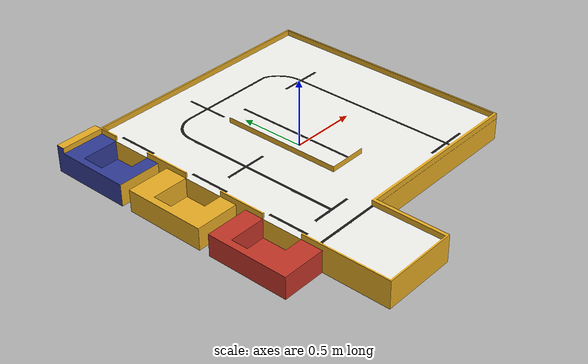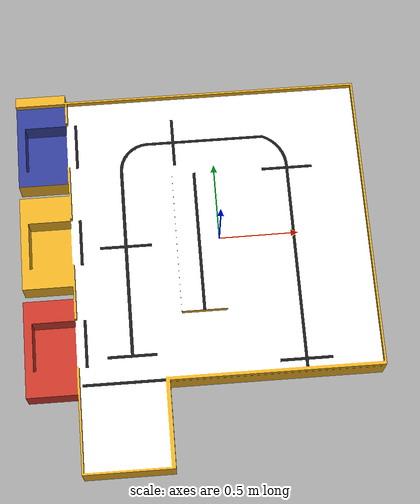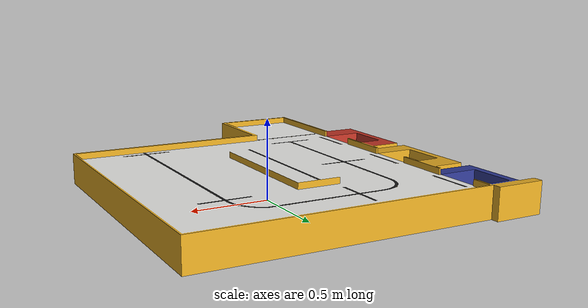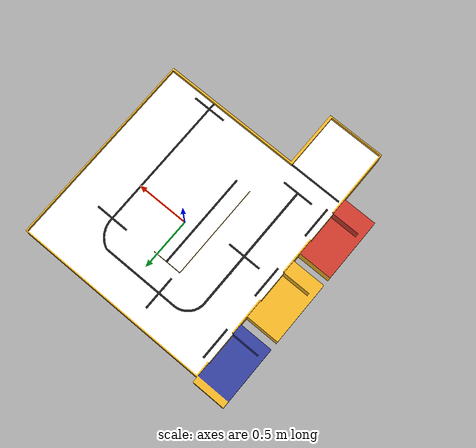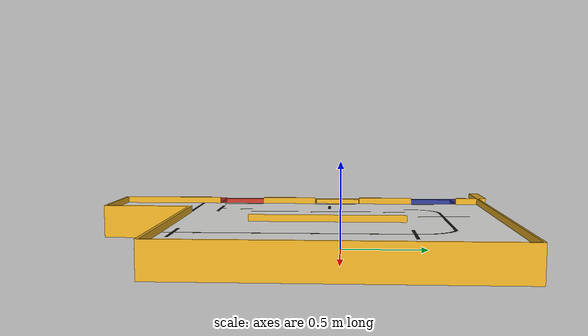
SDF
<?xml version="1.0" ?>
<sdf version="1.9">
  <model name="irc_stage">

    <static>true</static> <link name="link">

      <collision name="collision">
        <geometry>
          <mesh>
            <uri>model://irc_stage/meshes/irc_stage6.stl</uri>
            <scale>1 1 1</scale>
          </mesh>
        </geometry>
        <surface>
          <friction>
            <ode>
              <mu>1.0</mu> <mu2>1.0</mu2>
            </ode>
          </friction>
        </surface>
      </collision>

      <visual name="visual">
        <geometry>
          <mesh>
            <uri>model://irc_stage/meshes/irc_stage6.dae</uri>
            <scale>1 1 1</scale>
          </mesh>
        </geometry>
      </visual>

    </link>
  </model>
</sdf>
